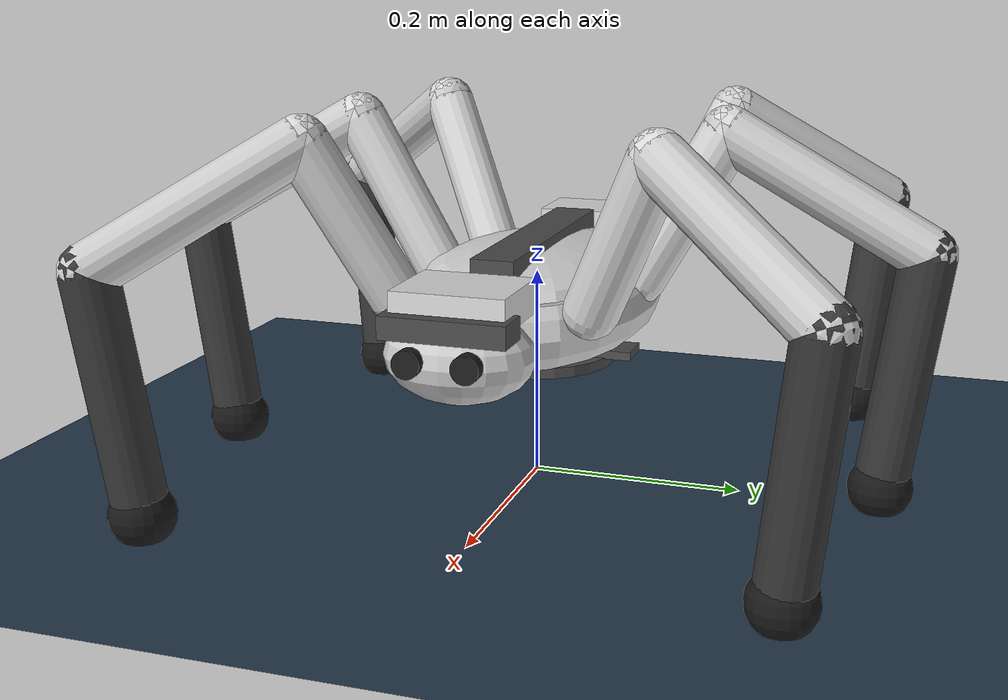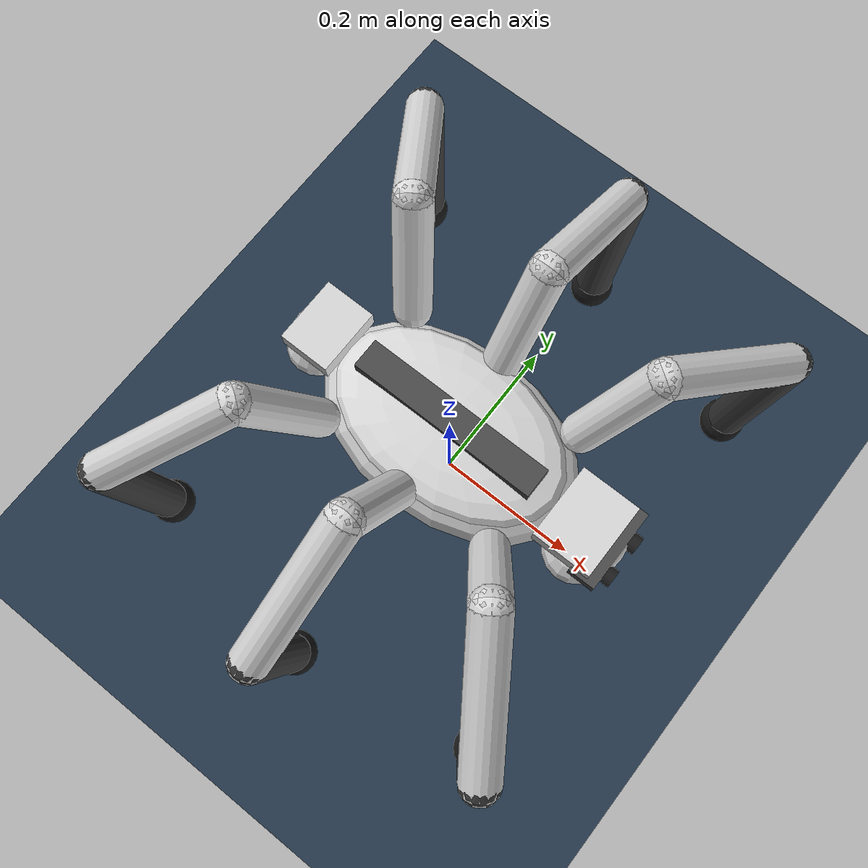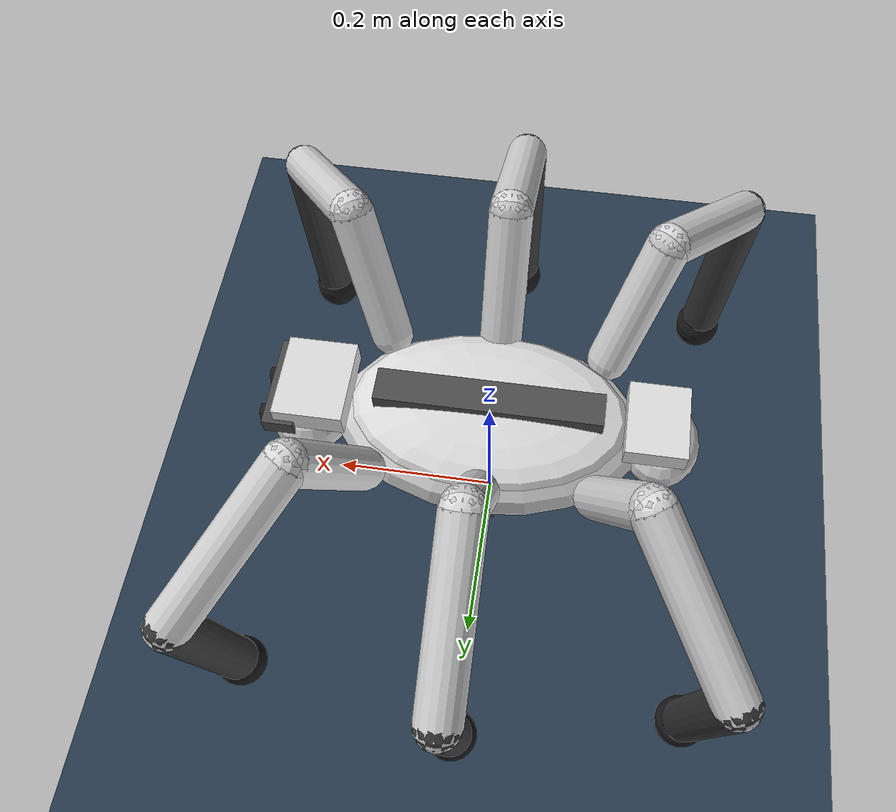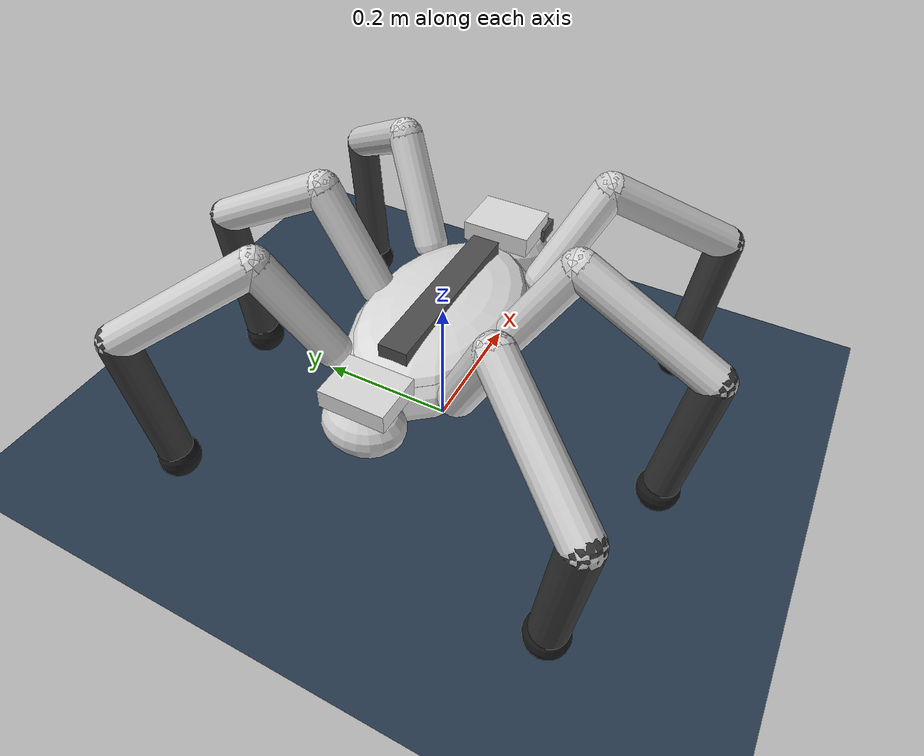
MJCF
<mujoco model="tick">
  <compiler angle="degree" coordinate="local" inertiafromgeom="true"/>

  <option integrator="implicitfast" timestep="0.002" solver="Newton" iterations="200">
    <flag filterparent="enable"/>
  </option>

  <visual>
    <global offwidth="1200" offheight="800"/>
  </visual>

  <custom>
    <numeric data="0.0 0.0 0.18 1.0 0.0 0.0 0.0  0 0 0  0 0 0  0 0 0  0 0 0  0 0 0  0 0 0" name="init_qpos"/>
  </custom>

  <default>
    <joint armature="1" damping="1" limited="true"/>
    <default class="knee_ankle">
      <joint armature="2" damping="8"/>
    </default>
    <geom conaffinity="0" condim="3" density="6.0" friction="1 0.5 0.5" margin="0.01" rgba="0.5 0.5 0.5 1"/>
  </default>

  <asset>
    <texture builtin="gradient" height="100" rgb1="1 1 1" rgb2="0.6 0.6 0.8" type="skybox" width="100"/>
    <texture builtin="checker" height="100" name="texplane" rgb1="0.2 0.3 0.4" rgb2="0.1 0.15 0.2" type="2d" width="100"/>
    <material name="MatPlane" reflectance="0.5" shininess="1" specular="1" texrepeat="60 60" texture="texplane"/>
    <material name="chassis_mat" rgba="0.80 0.80 0.80 1" specular="0.5" shininess="0.35"/>
    <material name="armor_mat"   rgba="0.86 0.86 0.86 1" specular="0.6" shininess="0.45"/>
    <material name="accent_mat"  rgba="0.30 0.30 0.30 1" specular="0.5" shininess="0.30"/>
    <material name="leg_mat"     rgba="0.22 0.22 0.22 1" specular="0.5" shininess="0.25"/>
    <material name="foot_mat"    rgba="0.10 0.10 0.10 1" specular="0.4"/>
    <material name="eye_mat"     rgba="0.12 0.12 0.12 1" specular="0.9" shininess="0.9"/>
    <material name="belly_glow"  rgba="0.95 0.55 0.10 1" emission="0.85"/>
  </asset>

  <worldbody>
    <light cutoff="100" diffuse="1 1 1" dir="0 0 -1.3" directional="true" exponent="1" pos="0 0 1.3" specular="0.1 0.1 0.1"/>
    <geom conaffinity="1" condim="3" material="MatPlane" name="floor" pos="0 0 0" size="40 40 40" type="plane"/>

    <body name="torso" pos="0 0 0.18">
      <camera name="track" mode="trackcom" pos="0 -3 1.2" xyaxes="1 0 0 0 0.5 1"/>
      <joint armature="0" damping="0" limited="false" margin="0.01" name="root" pos="0 0 0" type="free"/>
      <site name="torso_site" pos="0 0 0" size="0.01"/>

      <geom name="chassis" type="ellipsoid" size="0.18 0.115 0.055" pos="0 0 -0.005" material="chassis_mat"/>

      <geom name="shell_top"  type="ellipsoid" size="0.16 0.10  0.025" pos="0 0 0.025"  material="armor_mat"   contype="0" conaffinity="0" mass="0"/>
      <geom name="back_ridge" type="box"       size="0.13 0.020 0.012" pos="0 0 0.046"  material="accent_mat"  contype="0" conaffinity="0" mass="0"/>

      <geom name="belly_disc"     type="cylinder" size="0.075 0.005" pos="0  0 -0.060" material="accent_mat" contype="0" conaffinity="0" mass="0"/>
      <geom name="belly_eye_ring" type="cylinder" size="0.040 0.004" pos="0  0 -0.064" material="leg_mat"    contype="0" conaffinity="0" mass="0"/>
      <geom name="belly_eye"      type="cylinder" size="0.028 0.006" pos="0  0 -0.067" material="belly_glow" contype="0" conaffinity="0" mass="0"/>

      <geom name="belly_seg_f"  type="box" size="0.025 0.022 0.004" pos=" 0.115 0      -0.052" material="accent_mat" contype="0" conaffinity="0" mass="0"/>
      <geom name="belly_seg_b"  type="box" size="0.025 0.022 0.004" pos="-0.115 0      -0.052" material="accent_mat" contype="0" conaffinity="0" mass="0"/>
      <geom name="belly_seg_l"  type="box" size="0.018 0.022 0.004" pos=" 0     0.075  -0.052" material="accent_mat" contype="0" conaffinity="0" mass="0"/>
      <geom name="belly_seg_r"  type="box" size="0.018 0.022 0.004" pos=" 0    -0.075  -0.052" material="accent_mat" contype="0" conaffinity="0" mass="0"/>

      <geom name="head_front" type="ellipsoid" size="0.05 0.065 0.040" pos="0.21 0 -0.005" material="chassis_mat" contype="0" conaffinity="0" mass="0"/>
      <geom name="head_top"   type="box"       size="0.040 0.05 0.015" pos="0.20 0 0.038" material="armor_mat"  contype="0" conaffinity="0" mass="0"/>
      <geom name="brow"       type="box"       size="0.018 0.055 0.010" pos="0.235 0 0.025" material="accent_mat" contype="0" conaffinity="0" mass="0"/>

      <geom name="eye_l" type="cylinder" size="0.012 0.006" pos="0.260 0.025 0.000" euler="0 90 0" material="eye_mat" contype="0" conaffinity="0" mass="0"/>
      <geom name="eye_r" type="cylinder" size="0.012 0.006" pos="0.260 -0.025 0.000" euler="0 90 0" material="eye_mat" contype="0" conaffinity="0" mass="0"/>

      <geom name="rear_block" type="ellipsoid" size="0.045 0.055 0.035" pos="-0.20 0 -0.005" material="chassis_mat" contype="0" conaffinity="0" mass="0"/>
      <geom name="rear_plate" type="box"       size="0.035 0.045 0.013" pos="-0.19 0 0.038" material="armor_mat"  contype="0" conaffinity="0" mass="0"/>

      <body name="l1_upper" pos="0.13 0.09 0.020" euler="0 0 -35">
        <joint name="l1_hip" type="hinge" axis="0 0 1" range="-40 40" pos="0 0 0"/>
        <geom name="l1_upper_geom" fromto="0 0 0 0 0.08 0.14" size="0.025" type="capsule" material="armor_mat"/>
        <body name="l1_middle" pos="0 0.08 0.14">
          <joint name="l1_knee" class="knee_ankle" type="hinge" axis="-1 0 0" range="-80 0" pos="0 0 0"/>
          <geom name="l1_middle_geom" fromto="0 0 0 0 0.18 -0.10" size="0.025" type="capsule" material="chassis_mat"/>
          <body name="l1_lower" pos="0 0.18 -0.10">
            <joint name="l1_ankle" class="knee_ankle" type="hinge" axis="-1 0 0" range="0 100" pos="0 0 0"/>
            <geom name="l1_lower_geom" fromto="0 0 0 0 -0.03 -0.22" size="0.025" type="capsule" material="leg_mat"/>
            <body name="l1_foot" pos="0 -0.03 -0.22">
              <geom name="l1_foot_geom" type="sphere" size="0.030" material="foot_mat"/>
            </body>
          </body>
        </body>
      </body>

      <body name="l2_upper" pos="0 0.10 0.020">
        <joint name="l2_hip" type="hinge" axis="0 0 1" range="-40 40" pos="0 0 0"/>
        <geom name="l2_upper_geom" fromto="0 0 0 0 0.08 0.14" size="0.025" type="capsule" material="armor_mat"/>
        <body name="l2_middle" pos="0 0.08 0.14">
          <joint name="l2_knee" class="knee_ankle" type="hinge" axis="-1 0 0" range="-80 0" pos="0 0 0"/>
          <geom name="l2_middle_geom" fromto="0 0 0 0 0.18 -0.10" size="0.025" type="capsule" material="chassis_mat"/>
          <body name="l2_lower" pos="0 0.18 -0.10">
            <joint name="l2_ankle" class="knee_ankle" type="hinge" axis="-1 0 0" range="0 100" pos="0 0 0"/>
            <geom name="l2_lower_geom" fromto="0 0 0 0 -0.03 -0.22" size="0.025" type="capsule" material="leg_mat"/>
            <body name="l2_foot" pos="0 -0.03 -0.22">
              <geom name="l2_foot_geom" type="sphere" size="0.030" material="foot_mat"/>
            </body>
          </body>
        </body>
      </body>

      <body name="l3_upper" pos="-0.13 0.09 0.020" euler="0 0 35">
        <joint name="l3_hip" type="hinge" axis="0 0 1" range="-40 40" pos="0 0 0"/>
        <geom name="l3_upper_geom" fromto="0 0 0 0 0.08 0.14" size="0.025" type="capsule" material="armor_mat"/>
        <body name="l3_middle" pos="0 0.08 0.14">
          <joint name="l3_knee" class="knee_ankle" type="hinge" axis="-1 0 0" range="-80 0" pos="0 0 0"/>
          <geom name="l3_middle_geom" fromto="0 0 0 0 0.18 -0.10" size="0.025" type="capsule" material="chassis_mat"/>
          <body name="l3_lower" pos="0 0.18 -0.10">
            <joint name="l3_ankle" class="knee_ankle" type="hinge" axis="-1 0 0" range="0 100" pos="0 0 0"/>
            <geom name="l3_lower_geom" fromto="0 0 0 0 -0.03 -0.22" size="0.025" type="capsule" material="leg_mat"/>
            <body name="l3_foot" pos="0 -0.03 -0.22">
              <geom name="l3_foot_geom" type="sphere" size="0.030" material="foot_mat"/>
            </body>
          </body>
        </body>
      </body>

      <body name="r1_upper" pos="0.13 -0.09 0.020" euler="0 0 35">
        <joint name="r1_hip" type="hinge" axis="0 0 1" range="-40 40" pos="0 0 0"/>
        <geom name="r1_upper_geom" fromto="0 0 0 0 -0.08 0.14" size="0.025" type="capsule" material="armor_mat"/>
        <body name="r1_middle" pos="0 -0.08 0.14">
          <joint name="r1_knee" class="knee_ankle" type="hinge" axis="1 0 0" range="-80 0" pos="0 0 0"/>
          <geom name="r1_middle_geom" fromto="0 0 0 0 -0.18 -0.10" size="0.025" type="capsule" material="chassis_mat"/>
          <body name="r1_lower" pos="0 -0.18 -0.10">
            <joint name="r1_ankle" class="knee_ankle" type="hinge" axis="1 0 0" range="0 100" pos="0 0 0"/>
            <geom name="r1_lower_geom" fromto="0 0 0 0 0.03 -0.22" size="0.025" type="capsule" material="leg_mat"/>
            <body name="r1_foot" pos="0 0.03 -0.22">
              <geom name="r1_foot_geom" type="sphere" size="0.030" material="foot_mat"/>
            </body>
          </body>
        </body>
      </body>

      <body name="r2_upper" pos="0 -0.10 0.020">
        <joint name="r2_hip" type="hinge" axis="0 0 1" range="-40 40" pos="0 0 0"/>
        <geom name="r2_upper_geom" fromto="0 0 0 0 -0.08 0.14" size="0.025" type="capsule" material="armor_mat"/>
        <body name="r2_middle" pos="0 -0.08 0.14">
          <joint name="r2_knee" class="knee_ankle" type="hinge" axis="1 0 0" range="-80 0" pos="0 0 0"/>
          <geom name="r2_middle_geom" fromto="0 0 0 0 -0.18 -0.10" size="0.025" type="capsule" material="chassis_mat"/>
          <body name="r2_lower" pos="0 -0.18 -0.10">
            <joint name="r2_ankle" class="knee_ankle" type="hinge" axis="1 0 0" range="0 100" pos="0 0 0"/>
            <geom name="r2_lower_geom" fromto="0 0 0 0 0.03 -0.22" size="0.025" type="capsule" material="leg_mat"/>
            <body name="r2_foot" pos="0 0.03 -0.22">
              <geom name="r2_foot_geom" type="sphere" size="0.030" material="foot_mat"/>
            </body>
          </body>
        </body>
      </body>

      <body name="r3_upper" pos="-0.13 -0.09 0.020" euler="0 0 -35">
        <joint name="r3_hip" type="hinge" axis="0 0 1" range="-40 40" pos="0 0 0"/>
        <geom name="r3_upper_geom" fromto="0 0 0 0 -0.08 0.14" size="0.025" type="capsule" material="armor_mat"/>
        <body name="r3_middle" pos="0 -0.08 0.14">
          <joint name="r3_knee" class="knee_ankle" type="hinge" axis="1 0 0" range="-80 0" pos="0 0 0"/>
          <geom name="r3_middle_geom" fromto="0 0 0 0 -0.18 -0.10" size="0.025" type="capsule" material="chassis_mat"/>
          <body name="r3_lower" pos="0 -0.18 -0.10">
            <joint name="r3_ankle" class="knee_ankle" type="hinge" axis="1 0 0" range="0 100" pos="0 0 0"/>
            <geom name="r3_lower_geom" fromto="0 0 0 0 0.03 -0.22" size="0.025" type="capsule" material="leg_mat"/>
            <body name="r3_foot" pos="0 0.03 -0.22">
              <geom name="r3_foot_geom" type="sphere" size="0.030" material="foot_mat"/>
            </body>
          </body>
        </body>
      </body>

    </body>
  </worldbody>

  <contact>
    <exclude body1="torso" body2="l1_upper"/>
    <exclude body1="torso" body2="l2_upper"/>
    <exclude body1="torso" body2="l3_upper"/>
    <exclude body1="torso" body2="r1_upper"/>
    <exclude body1="torso" body2="r2_upper"/>
    <exclude body1="torso" body2="r3_upper"/>
  </contact>

  <actuator>
    <motor joint="l1_hip"   ctrlrange="-1 1" ctrllimited="true" gear="120"/>
    <motor joint="l1_knee"  ctrlrange="-1 1" ctrllimited="true" gear="120"/>
    <motor joint="l1_ankle" ctrlrange="-1 1" ctrllimited="true" gear="120"/>

    <motor joint="l2_hip"   ctrlrange="-1 1" ctrllimited="true" gear="120"/>
    <motor joint="l2_knee"  ctrlrange="-1 1" ctrllimited="true" gear="120"/>
    <motor joint="l2_ankle" ctrlrange="-1 1" ctrllimited="true" gear="120"/>

    <motor joint="l3_hip"   ctrlrange="-1 1" ctrllimited="true" gear="120"/>
    <motor joint="l3_knee"  ctrlrange="-1 1" ctrllimited="true" gear="120"/>
    <motor joint="l3_ankle" ctrlrange="-1 1" ctrllimited="true" gear="120"/>

    <motor joint="r1_hip"   ctrlrange="-1 1" ctrllimited="true" gear="120"/>
    <motor joint="r1_knee"  ctrlrange="-1 1" ctrllimited="true" gear="120"/>
    <motor joint="r1_ankle" ctrlrange="-1 1" ctrllimited="true" gear="120"/>

    <motor joint="r2_hip"   ctrlrange="-1 1" ctrllimited="true" gear="120"/>
    <motor joint="r2_knee"  ctrlrange="-1 1" ctrllimited="true" gear="120"/>
    <motor joint="r2_ankle" ctrlrange="-1 1" ctrllimited="true" gear="120"/>

    <motor joint="r3_hip"   ctrlrange="-1 1" ctrllimited="true" gear="120"/>
    <motor joint="r3_knee"  ctrlrange="-1 1" ctrllimited="true" gear="120"/>
    <motor joint="r3_ankle" ctrlrange="-1 1" ctrllimited="true" gear="120"/>
  </actuator>

  <sensor>
    <jointpos name="l1_hip_pos" joint="l1_hip"/>
    <jointpos name="l1_knee_pos" joint="l1_knee"/>
    <jointpos name="l1_ankle_pos" joint="l1_ankle"/>

    <jointpos name="l2_hip_pos" joint="l2_hip"/>
    <jointpos name="l2_knee_pos" joint="l2_knee"/>
    <jointpos name="l2_ankle_pos" joint="l2_ankle"/>

    <jointpos name="l3_hip_pos" joint="l3_hip"/>
    <jointpos name="l3_knee_pos" joint="l3_knee"/>
    <jointpos name="l3_ankle_pos" joint="l3_ankle"/>

    <jointpos name="r1_hip_pos" joint="r1_hip"/>
    <jointpos name="r1_knee_pos" joint="r1_knee"/>
    <jointpos name="r1_ankle_pos" joint="r1_ankle"/>

    <jointpos name="r2_hip_pos" joint="r2_hip"/>
    <jointpos name="r2_knee_pos" joint="r2_knee"/>
    <jointpos name="r2_ankle_pos" joint="r2_ankle"/>

    <jointpos name="r3_hip_pos" joint="r3_hip"/>
    <jointpos name="r3_knee_pos" joint="r3_knee"/>
    <jointpos name="r3_ankle_pos" joint="r3_ankle"/>

    <jointvel name="l1_hip_vel" joint="l1_hip"/>
    <jointvel name="l1_knee_vel" joint="l1_knee"/>
    <jointvel name="l1_ankle_vel" joint="l1_ankle"/>

    <jointvel name="l2_hip_vel" joint="l2_hip"/>
    <jointvel name="l2_knee_vel" joint="l2_knee"/>
    <jointvel name="l2_ankle_vel" joint="l2_ankle"/>

    <jointvel name="l3_hip_vel" joint="l3_hip"/>
    <jointvel name="l3_knee_vel" joint="l3_knee"/>
    <jointvel name="l3_ankle_vel" joint="l3_ankle"/>

    <jointvel name="r1_hip_vel" joint="r1_hip"/>
    <jointvel name="r1_knee_vel" joint="r1_knee"/>
    <jointvel name="r1_ankle_vel" joint="r1_ankle"/>

    <jointvel name="r2_hip_vel" joint="r2_hip"/>
    <jointvel name="r2_knee_vel" joint="r2_knee"/>
    <jointvel name="r2_ankle_vel" joint="r2_ankle"/>

    <jointvel name="r3_hip_vel" joint="r3_hip"/>
    <jointvel name="r3_knee_vel" joint="r3_knee"/>
    <jointvel name="r3_ankle_vel" joint="r3_ankle"/>

    <accelerometer name="torso_accel" site="torso_site"/>
    <gyro name="torso_gyro" site="torso_site"/>
  </sensor>
</mujoco>
